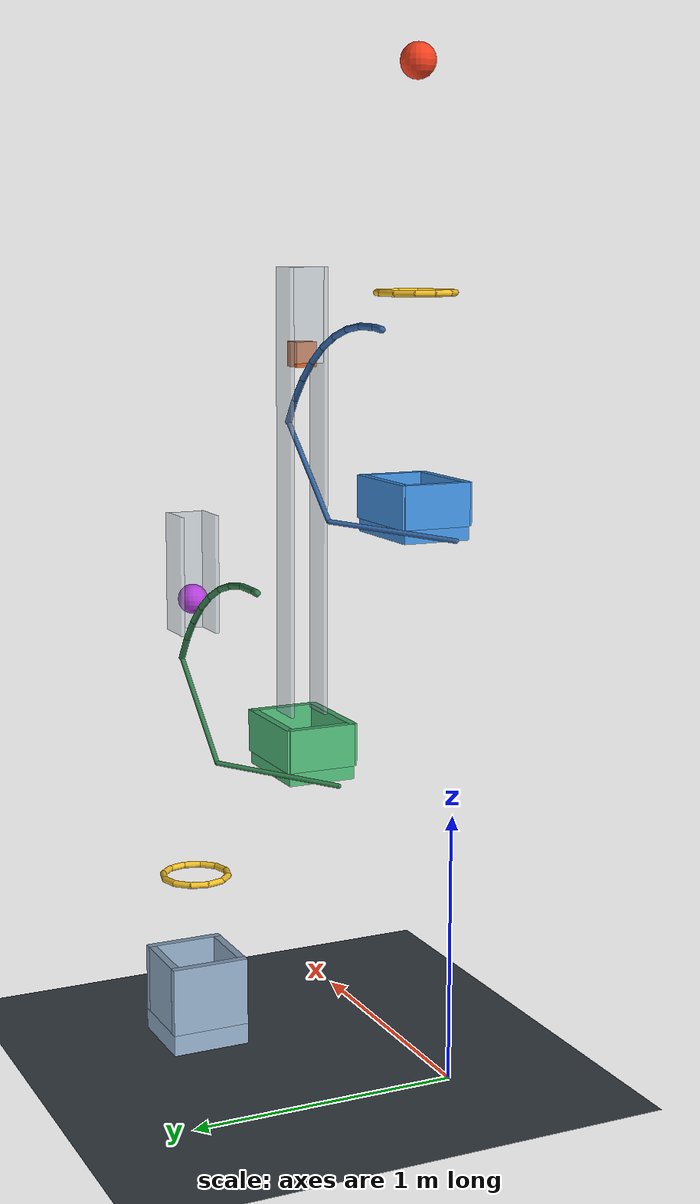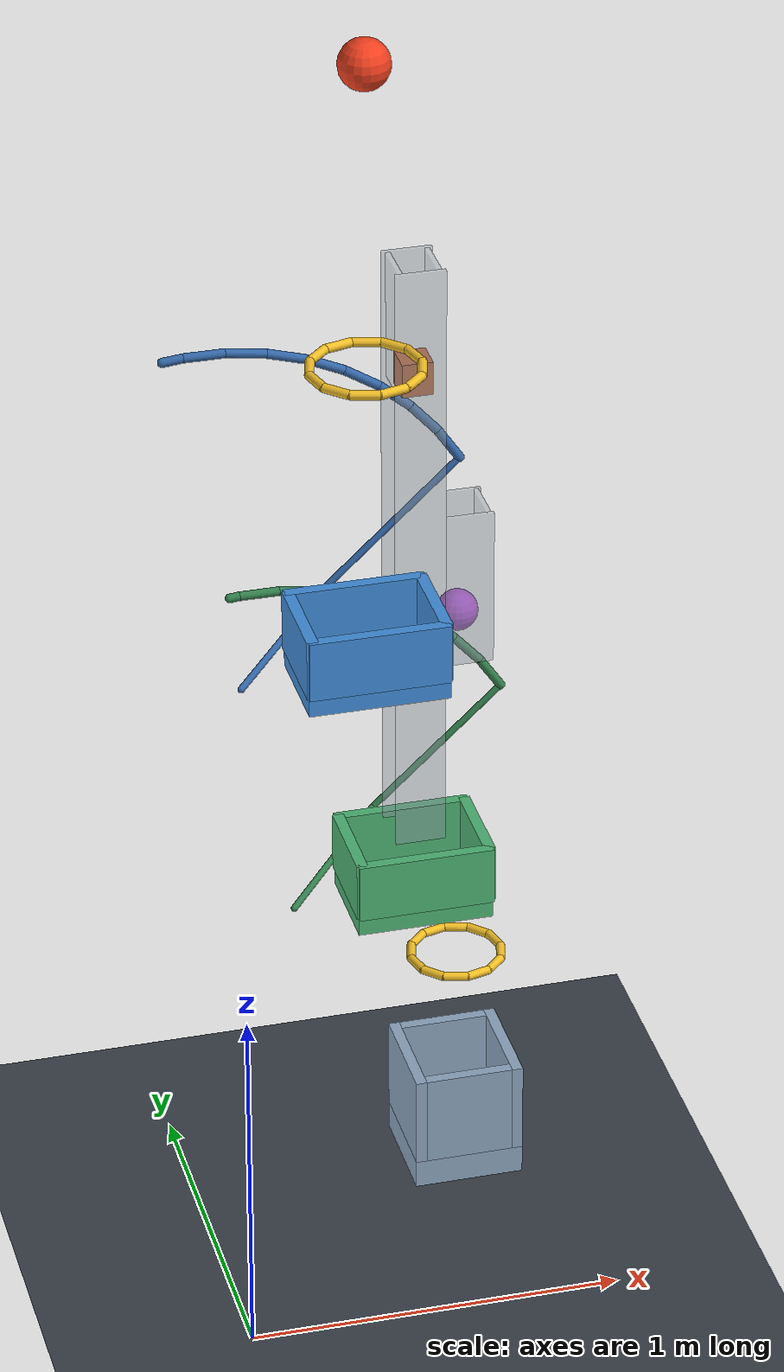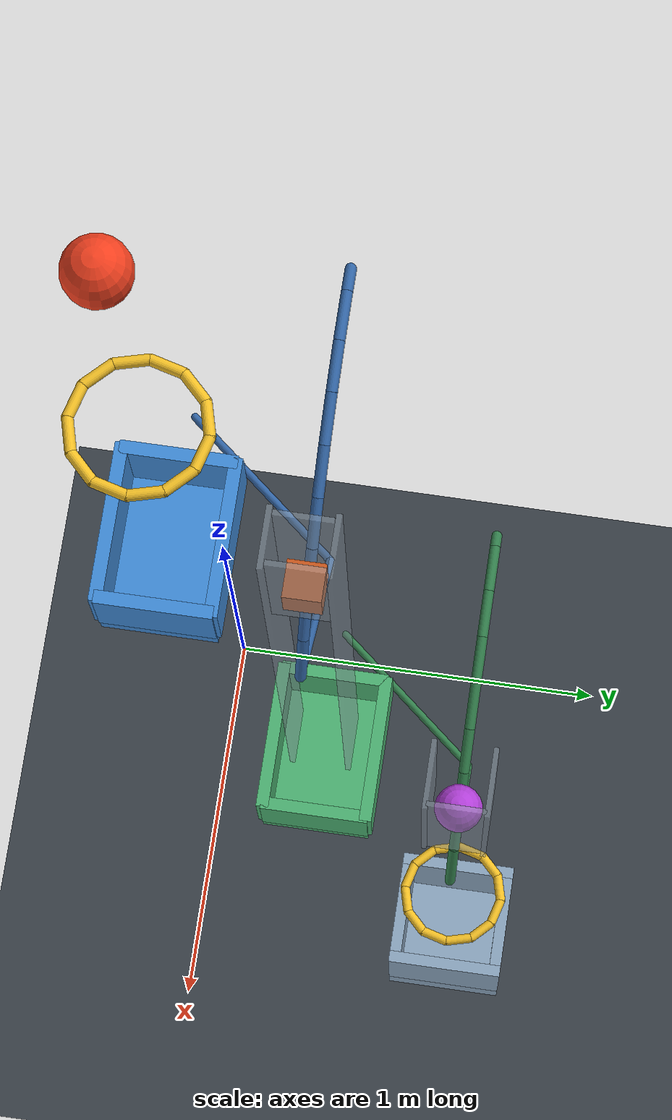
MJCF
<mujoco model="passive_two_stage_release">
  <compiler angle="radian"/>
  <option timestep="0.002" gravity="0 0 -9.81" integrator="implicitfast" solver="Newton" iterations="100"/>
  <size njmax="2000" nconmax="300"/>

  <worldbody>
    <light name="overhead" pos="0 -2 5" dir="0 0 -1"/>
    <geom name="floor" type="plane" size="5 5 0.1" friction="0.8 0.01 0.001" rgba="0.22 0.25 0.28 1"/>

    <!-- ball1 starts 0.8 m above hoop1's center plane. -->
    <body name="ball1" pos="0.32 0 3.65">
      <freejoint name="ball1_free"/>
      <geom name="ball1_sphere" type="sphere" size="0.065" mass="1" friction="0.6 0.01 0.001" solref="0.008 1" rgba="0.95 0.25 0.12 1"/>
    </body>

    <body name="hoop1" pos="0.32 0 2.85">
      <geom name="hoop1_01" type="capsule" fromto="0.14 0 0 0.121244 0.07 0" size="0.012" rgba="0.95 0.75 0.15 1"/>
      <geom name="hoop1_02" type="capsule" fromto="0.121244 0.07 0 0.07 0.121244 0" size="0.012" rgba="0.95 0.75 0.15 1"/>
      <geom name="hoop1_03" type="capsule" fromto="0.07 0.121244 0 0 0.14 0" size="0.012" rgba="0.95 0.75 0.15 1"/>
      <geom name="hoop1_04" type="capsule" fromto="0 0.14 0 -0.07 0.121244 0" size="0.012" rgba="0.95 0.75 0.15 1"/>
      <geom name="hoop1_05" type="capsule" fromto="-0.07 0.121244 0 -0.121244 0.07 0" size="0.012" rgba="0.95 0.75 0.15 1"/>
      <geom name="hoop1_06" type="capsule" fromto="-0.121244 0.07 0 -0.14 0 0" size="0.012" rgba="0.95 0.75 0.15 1"/>
      <geom name="hoop1_07" type="capsule" fromto="-0.14 0 0 -0.121244 -0.07 0" size="0.012" rgba="0.95 0.75 0.15 1"/>
      <geom name="hoop1_08" type="capsule" fromto="-0.121244 -0.07 0 -0.07 -0.121244 0" size="0.012" rgba="0.95 0.75 0.15 1"/>
      <geom name="hoop1_09" type="capsule" fromto="-0.07 -0.121244 0 0 -0.14 0" size="0.012" rgba="0.95 0.75 0.15 1"/>
      <geom name="hoop1_10" type="capsule" fromto="0 -0.14 0 0.07 -0.121244 0" size="0.012" rgba="0.95 0.75 0.15 1"/>
      <geom name="hoop1_11" type="capsule" fromto="0.07 -0.121244 0 0.121244 -0.07 0" size="0.012" rgba="0.95 0.75 0.15 1"/>
      <geom name="hoop1_12" type="capsule" fromto="0.121244 -0.07 0 0.14 0 0" size="0.012" rgba="0.95 0.75 0.15 1"/>
    </body>

    <!-- The tray retains ball1; its attached cam releases block near the lower stop. -->
    <body name="flap1" pos="0 0 2">
      <inertial pos="0.20 0.08 0.04" mass="0.35" diaginertia="0.025 0.045 0.025"/>
      <joint name="flap1_hinge" type="hinge" axis="0 1 0" limited="true" range="0 1.047198" stiffness="0.5" springref="-2" damping="0.15" armature="0.003" solreflimit="0.004 1" solimplimit="0.99 0.999 0.001"/>
      <geom name="flap1_deck" type="box" pos="0.32 0 0" size="0.18 0.13 0.025" friction="0.7 0.01 0.001" solref="0.008 1" rgba="0.25 0.55 0.85 1"/>
      <geom name="flap1_end_wall" type="box" pos="0.49 0 0.105" size="0.015 0.13 0.08" friction="0.7 0.01 0.001" solref="0.008 1" rgba="0.25 0.55 0.85 1"/>
      <geom name="flap1_back_wall" type="box" pos="0.15 0 0.105" size="0.015 0.13 0.08" friction="0.7 0.01 0.001" solref="0.008 1" rgba="0.25 0.55 0.85 1"/>
      <geom name="flap1_side_wall_a" type="box" pos="0.32 0.125 0.105" size="0.18 0.015 0.08" friction="0.7 0.01 0.001" solref="0.008 1" rgba="0.25 0.55 0.85 1"/>
      <geom name="flap1_side_wall_b" type="box" pos="0.32 -0.125 0.105" size="0.18 0.015 0.08" friction="0.7 0.01 0.001" solref="0.008 1" rgba="0.25 0.55 0.85 1"/>
      <geom name="flap1_cam_link" type="capsule" fromto="0 0 0 0.30 0.35 0.05" size="0.009" rgba="0.2 0.4 0.65 1"/>
      <geom name="flap1_cam_spoke" type="capsule" fromto="0.30 0.35 0.05 0.649519 0.35 0.375" size="0.009" rgba="0.2 0.4 0.65 1"/>
      <geom name="flap1_cam_01" type="capsule" fromto="0.649519 0.35 0.375 0.591008 0.35 0.461746" size="0.012" priority="2" friction="0.002 0.0001 0.0001" solref="0.008 1" rgba="0.2 0.4 0.65 1"/>
      <geom name="flap1_cam_02" type="capsule" fromto="0.591008 0.35 0.461746 0.520994 0.35 0.539505" size="0.012" priority="2" friction="0.002 0.0001 0.0001" solref="0.008 1" rgba="0.2 0.4 0.65 1"/>
      <geom name="flap1_cam_03" type="capsule" fromto="0.520994 0.35 0.539505 0.440839 0.35 0.606763" size="0.012" priority="2" friction="0.002 0.0001 0.0001" solref="0.008 1" rgba="0.2 0.4 0.65 1"/>
      <geom name="flap1_cam_04" type="capsule" fromto="0.440839 0.35 0.606763 0.352104 0.35 0.662211" size="0.012" priority="2" friction="0.002 0.0001 0.0001" solref="0.008 1" rgba="0.2 0.4 0.65 1"/>
      <geom name="flap1_cam_05" type="capsule" fromto="0.352104 0.35 0.662211 0.256515 0.35 0.704769" size="0.012" priority="2" friction="0.002 0.0001 0.0001" solref="0.008 1" rgba="0.2 0.4 0.65 1"/>
      <geom name="flap1_cam_06" type="capsule" fromto="0.256515 0.35 0.704769 0.155934 0.35 0.733611" size="0.012" priority="2" friction="0.002 0.0001 0.0001" solref="0.008 1" rgba="0.2 0.4 0.65 1"/>
      <geom name="flap1_cam_07" type="capsule" fromto="0.155934 0.35 0.733611 0.052317 0.35 0.748173" size="0.012" priority="2" friction="0.002 0.0001 0.0001" solref="0.008 1" rgba="0.2 0.4 0.65 1"/>
      <geom name="flap1_cam_08" type="capsule" fromto="0.052317 0.35 0.748173 -0.052317 0.35 0.748173" size="0.012" priority="2" friction="0.002 0.0001 0.0001" solref="0.008 1" rgba="0.2 0.4 0.65 1"/>
      <geom name="flap1_cam_09" type="capsule" fromto="-0.052317 0.35 0.748173 -0.104380 0.35 0.742701" size="0.012" priority="2" friction="0.002 0.0001 0.0001" solref="0.008 1" rgba="0.2 0.4 0.65 1"/>
    </body>

    <body name="block" pos="0.53 0.35 2.63">
      <freejoint name="block_free"/>
      <geom name="block_box" type="box" size="0.04 0.04 0.045" mass="1" friction="0.6 0.01 0.001" solref="0.008 1" rgba="0.8 0.35 0.12 1"/>
    </body>

    <!-- The second tray retains block after impact. -->
    <body name="flap2" pos="0.21 0.35 1.1">
      <inertial pos="0.20 0.08 0.04" mass="0.35" diaginertia="0.025 0.045 0.025"/>
      <joint name="flap2_hinge" type="hinge" axis="0 1 0" limited="true" range="0 1.047198" stiffness="0.5" springref="-2" damping="0.15" armature="0.003" solreflimit="0.004 1" solimplimit="0.99 0.999 0.001"/>
      <geom name="flap2_deck" type="box" pos="0.32 0 0" size="0.18 0.13 0.025" friction="0.7 0.01 0.001" solref="0.008 1" rgba="0.3 0.7 0.45 1"/>
      <geom name="flap2_end_wall" type="box" pos="0.49 0 0.105" size="0.015 0.13 0.08" friction="0.7 0.01 0.001" solref="0.008 1" rgba="0.3 0.7 0.45 1"/>
      <geom name="flap2_back_wall" type="box" pos="0.15 0 0.105" size="0.015 0.13 0.08" friction="0.7 0.01 0.001" solref="0.008 1" rgba="0.3 0.7 0.45 1"/>
      <geom name="flap2_side_wall_a" type="box" pos="0.32 0.125 0.105" size="0.18 0.015 0.08" friction="0.7 0.01 0.001" solref="0.008 1" rgba="0.3 0.7 0.45 1"/>
      <geom name="flap2_side_wall_b" type="box" pos="0.32 -0.125 0.105" size="0.18 0.015 0.08" friction="0.7 0.01 0.001" solref="0.008 1" rgba="0.3 0.7 0.45 1"/>
      <geom name="flap2_cam_link" type="capsule" fromto="0 0 0 0.30 0.35 0.05" size="0.009" rgba="0.2 0.5 0.3 1"/>
      <geom name="flap2_cam_spoke" type="capsule" fromto="0.30 0.35 0.05 0.649519 0.35 0.375" size="0.009" rgba="0.2 0.5 0.3 1"/>
      <geom name="flap2_cam_01" type="capsule" fromto="0.649519 0.35 0.375 0.591008 0.35 0.461746" size="0.012" priority="2" friction="0.002 0.0001 0.0001" solref="0.008 1" rgba="0.2 0.5 0.3 1"/>
      <geom name="flap2_cam_02" type="capsule" fromto="0.591008 0.35 0.461746 0.520994 0.35 0.539505" size="0.012" priority="2" friction="0.002 0.0001 0.0001" solref="0.008 1" rgba="0.2 0.5 0.3 1"/>
      <geom name="flap2_cam_03" type="capsule" fromto="0.520994 0.35 0.539505 0.440839 0.35 0.606763" size="0.012" priority="2" friction="0.002 0.0001 0.0001" solref="0.008 1" rgba="0.2 0.5 0.3 1"/>
      <geom name="flap2_cam_04" type="capsule" fromto="0.440839 0.35 0.606763 0.352104 0.35 0.662211" size="0.012" priority="2" friction="0.002 0.0001 0.0001" solref="0.008 1" rgba="0.2 0.5 0.3 1"/>
      <geom name="flap2_cam_05" type="capsule" fromto="0.352104 0.35 0.662211 0.256515 0.35 0.704769" size="0.012" priority="2" friction="0.002 0.0001 0.0001" solref="0.008 1" rgba="0.2 0.5 0.3 1"/>
      <geom name="flap2_cam_06" type="capsule" fromto="0.256515 0.35 0.704769 0.155934 0.35 0.733611" size="0.012" priority="2" friction="0.002 0.0001 0.0001" solref="0.008 1" rgba="0.2 0.5 0.3 1"/>
      <geom name="flap2_cam_07" type="capsule" fromto="0.155934 0.35 0.733611 0.052317 0.35 0.748173" size="0.012" priority="2" friction="0.002 0.0001 0.0001" solref="0.008 1" rgba="0.2 0.5 0.3 1"/>
      <geom name="flap2_cam_08" type="capsule" fromto="0.052317 0.35 0.748173 -0.052317 0.35 0.748173" size="0.012" priority="2" friction="0.002 0.0001 0.0001" solref="0.008 1" rgba="0.2 0.5 0.3 1"/>
      <geom name="flap2_cam_09" type="capsule" fromto="-0.052317 0.35 0.748173 -0.078396 0.35 0.745891" size="0.012" priority="2" friction="0.002 0.0001 0.0001" solref="0.008 1" rgba="0.2 0.5 0.3 1"/>
    </body>

    <body name="ball2" pos="0.74 0.70 1.723">
      <freejoint name="ball2_free"/>
      <geom name="ball2_sphere" type="sphere" size="0.055" mass="0.15" friction="0.6 0.01 0.001" solref="0.008 1" rgba="0.7 0.25 0.85 1"/>
    </body>

    <!-- Lowered to clear the entire flap2 cam and support-spoke sweep. -->
    <body name="hoop2" pos="0.74 0.70 0.65">
      <geom name="hoop2_01" type="capsule" fromto="0.125 0 0 0.108253 0.0625 0" size="0.012" rgba="0.95 0.75 0.15 1"/>
      <geom name="hoop2_02" type="capsule" fromto="0.108253 0.0625 0 0.0625 0.108253 0" size="0.012" rgba="0.95 0.75 0.15 1"/>
      <geom name="hoop2_03" type="capsule" fromto="0.0625 0.108253 0 0 0.125 0" size="0.012" rgba="0.95 0.75 0.15 1"/>
      <geom name="hoop2_04" type="capsule" fromto="0 0.125 0 -0.0625 0.108253 0" size="0.012" rgba="0.95 0.75 0.15 1"/>
      <geom name="hoop2_05" type="capsule" fromto="-0.0625 0.108253 0 -0.108253 0.0625 0" size="0.012" rgba="0.95 0.75 0.15 1"/>
      <geom name="hoop2_06" type="capsule" fromto="-0.108253 0.0625 0 -0.125 0 0" size="0.012" rgba="0.95 0.75 0.15 1"/>
      <geom name="hoop2_07" type="capsule" fromto="-0.125 0 0 -0.108253 -0.0625 0" size="0.012" rgba="0.95 0.75 0.15 1"/>
      <geom name="hoop2_08" type="capsule" fromto="-0.108253 -0.0625 0 -0.0625 -0.108253 0" size="0.012" rgba="0.95 0.75 0.15 1"/>
      <geom name="hoop2_09" type="capsule" fromto="-0.0625 -0.108253 0 0 -0.125 0" size="0.012" rgba="0.95 0.75 0.15 1"/>
      <geom name="hoop2_10" type="capsule" fromto="0 -0.125 0 0.0625 -0.108253 0" size="0.012" rgba="0.95 0.75 0.15 1"/>
      <geom name="hoop2_11" type="capsule" fromto="0.0625 -0.108253 0 0.108253 -0.0625 0" size="0.012" rgba="0.95 0.75 0.15 1"/>
      <geom name="hoop2_12" type="capsule" fromto="0.108253 -0.0625 0 0.125 0 0" size="0.012" rgba="0.95 0.75 0.15 1"/>
    </body>

    <body name="cup" pos="0.74 0.70 0">
      <geom name="cup_bottom" type="box" pos="0 0 0.04" size="0.15 0.15 0.04" friction="0.9 0.02 0.002" solref="0.008 1" rgba="0.55 0.65 0.75 1"/>
      <geom name="cup_wall_x_plus" type="box" pos="0.135 0 0.21" size="0.015 0.15 0.13" friction="0.9 0.02 0.002" solref="0.008 1" rgba="0.55 0.65 0.75 1"/>
      <geom name="cup_wall_x_minus" type="box" pos="-0.135 0 0.21" size="0.015 0.15 0.13" friction="0.9 0.02 0.002" solref="0.008 1" rgba="0.55 0.65 0.75 1"/>
      <geom name="cup_wall_y_plus" type="box" pos="0 0.135 0.21" size="0.12 0.015 0.13" friction="0.9 0.02 0.002" solref="0.008 1" rgba="0.55 0.65 0.75 1"/>
      <geom name="cup_wall_y_minus" type="box" pos="0 -0.135 0.21" size="0.12 0.015 0.13" friction="0.9 0.02 0.002" solref="0.008 1" rgba="0.55 0.65 0.75 1"/>
    </body>

    <body name="guides" pos="0 0 0">
      <geom name="guides_block_x_plus" type="box" pos="0.58 0.35 2.77" size="0.006 0.06 0.17" priority="3" friction="0.01 0.0001 0.0001" solref="0.008 1" rgba="0.65 0.7 0.75 0.45"/>
      <geom name="guides_block_x_minus" type="box" pos="0.48 0.35 2.77" size="0.006 0.06 0.17" priority="3" friction="0.01 0.0001 0.0001" solref="0.008 1" rgba="0.65 0.7 0.75 0.45"/>
      <geom name="guides_block_y_plus" type="box" pos="0.53 0.417 2.12" size="0.065 0.006 0.82" priority="3" friction="0.01 0.0001 0.0001" solref="0.008 1" rgba="0.65 0.7 0.75 0.45"/>
      <geom name="guides_block_y_minus" type="box" pos="0.53 0.283 2.12" size="0.065 0.006 0.82" priority="3" friction="0.01 0.0001 0.0001" solref="0.008 1" rgba="0.65 0.7 0.75 0.45"/>
      <geom name="guides_ball2_x_plus" type="box" pos="0.806 0.70 1.82" size="0.006 0.066 0.22" priority="3" friction="0.01 0.0001 0.0001" solref="0.008 1" rgba="0.65 0.7 0.75 0.45"/>
      <geom name="guides_ball2_y_plus" type="box" pos="0.74 0.768 1.82" size="0.078 0.006 0.22" priority="3" friction="0.01 0.0001 0.0001" solref="0.008 1" rgba="0.65 0.7 0.75 0.45"/>
      <geom name="guides_ball2_y_minus" type="box" pos="0.74 0.632 1.82" size="0.078 0.006 0.22" priority="3" friction="0.01 0.0001 0.0001" solref="0.008 1" rgba="0.65 0.7 0.75 0.45"/>
    </body>
  </worldbody>

  <keyframe>
    <key name="start" time="0" qpos="0.32 0 3.65 1 0 0 0 0 0.53 0.35 2.63 1 0 0 0 0 0.74 0.70 1.723 1 0 0 0"/>
  </keyframe>
</mujoco>
